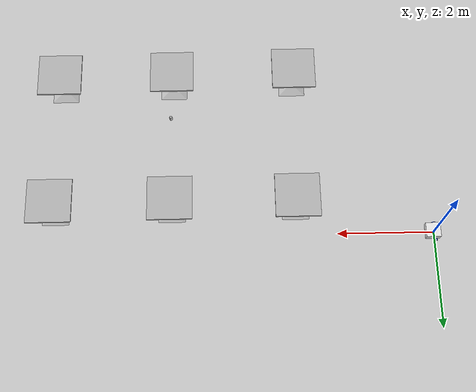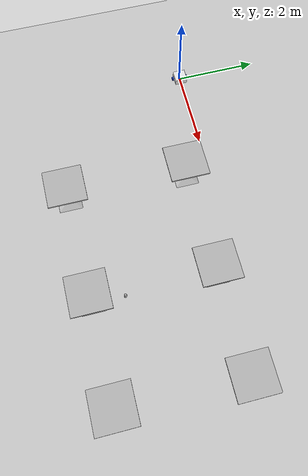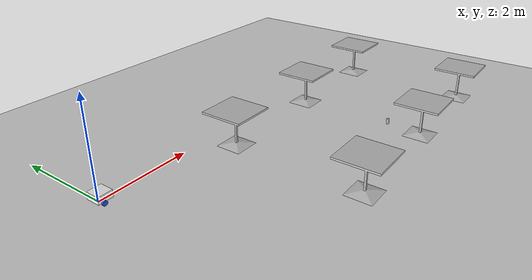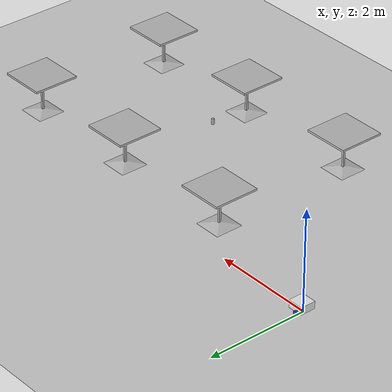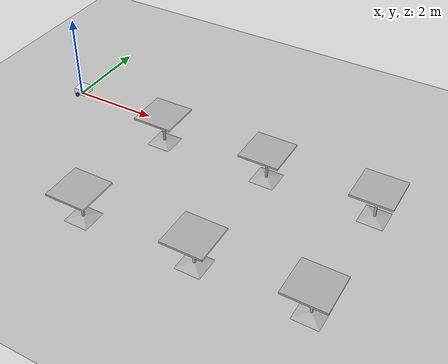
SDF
<sdf version="1.7">
 <world name="default">
  <light name="sun" type="directional">
   <pose>0 0 10 0 -0 0</pose>
   <diffuse>0.8 0.8 0.8 1</diffuse>
   <specular>0.2 0.2 0.2 1</specular>
   <attenuation>
    <range>1000</range>
    <constant>0.9</constant>
    <linear>0.01</linear>
    <quadratic>0.001</quadratic>
   </attenuation>
   <direction>-0.5 0.1 -0.9</direction>
   <spot><inner_angle>0</inner_angle><outer_angle>0</outer_angle><falloff>0</falloff></spot>
  </light>
  <model name="ground_plane">
   <static>1</static>
   <link name="link">
    <collision name="collision">
     <geometry><plane><normal>0 0 1</normal><size>100 100</size></plane></geometry>
     <surface>
      <contact><collide_bitmask>65535</collide_bitmask></contact>
      <friction><ode><mu>100</mu><mu2>50</mu2></ode></friction>
     </surface>
    </collision>
    <visual name="visual">
     <cast_shadows>0</cast_shadows>
     <geometry><plane><normal>0 0 1</normal><size>100 100</size></plane></geometry>
     <material>
      <script><uri>file://media/materials/scripts/gazebo.material</uri><name>Gazebo/Grey</name></script>
     </material>
    </visual>
   </link>
  </model>
  <gravity>0 0 -9.8</gravity>
  <magnetic_field>6e-06 2.3e-05 -4.2e-05</magnetic_field>
  <atmosphere type="adiabatic"/>
  <physics type="ode">
   <max_step_size>0.001</max_step_size>
   <real_time_factor>1</real_time_factor>
   <real_time_update_rate>1000</real_time_update_rate>
  </physics>
  <scene><ambient>0.4 0.4 0.4 1</ambient><background>0.7 0.7 0.7 1</background><shadows>1</shadows></scene>
  <audio><device>default</device></audio>
  <spherical_coordinates>
   <surface_model>EARTH_WGS84</surface_model>
   <latitude_deg>0</latitude_deg>
   <longitude_deg>0</longitude_deg>
   <elevation>0</elevation>
   <heading_deg>0</heading_deg>
  </spherical_coordinates>
  <model name="my_bot">
   <link name="base_link">
    <inertial>
     <pose>0.065 0 0.0625 0 -0 0</pose>
     <mass>0.6</mass>
     <inertia>
      <ixx>0.0147354</ixx>
      <ixy>0</ixy>
      <ixz>0.0005625</ixz>
      <iyy>0.0154104</iyy>
      <iyz>0</iyz>
      <izz>0.008275</izz>
     </inertia>
    </inertial>
    <collision name="base_link_fixed_joint_lump__chassis_collision">
     <pose>0.05 0 0.075 0 -0 0</pose>
     <geometry><box><size>0.3 0.3 0.15</size></box></geometry>
    </collision>
    <collision name="base_link_fixed_joint_lump__caster_wheel_collision_1">
     <pose>0.14 0 0 0 -0 0</pose>
     <geometry><sphere><radius>0.05</radius></sphere></geometry>
     <surface><friction><ode><mu>0.001</mu><mu2>0.001</mu2></ode></friction></surface>
    </collision>
    <visual name="base_link_fixed_joint_lump__chassis_visual">
     <pose>0.05 0 0.075 0 -0 0</pose>
     <geometry><box><size>0.3 0.3 0.15</size></box></geometry>
     <material>
      <script><name>Gazebo/White</name><uri>file://media/materials/scripts/gazebo.material</uri></script>
     </material>
    </visual>
    <visual name="base_link_fixed_joint_lump__caster_wheel_visual_1">
     <pose>0.14 0 0 0 -0 0</pose>
     <geometry><sphere><radius>0.05</radius></sphere></geometry>
     <material>
      <script><name>Gazebo/Black</name><uri>file://media/materials/scripts/gazebo.material</uri></script>
     </material>
    </visual>
   </link>
   <joint name="left_wheel_joint" type="revolute">
    <pose relative_to="base_link">0 0.175 0 -1.5708 0 0</pose>
    <parent>base_link</parent>
    <child>left_wheel</child>
    <axis>
     <xyz>0 0 1</xyz>
     <limit><lower>-1e+16</lower><upper>1e+16</upper></limit>
     <dynamics><spring_reference>0</spring_reference><spring_stiffness>0</spring_stiffness></dynamics>
    </axis>
   </joint>
   <link name="left_wheel">
    <pose relative_to="left_wheel_joint">0 0 0 0 -0 0</pose>
    <inertial>
     <mass>0.1</mass>
     <inertia>
      <ixx>7.58333e-05</ixx>
      <ixy>0</ixy>
      <ixz>0</ixz>
      <iyy>7.58333e-05</iyy>
      <iyz>0</iyz>
      <izz>0.000125</izz>
     </inertia>
    </inertial>
    <collision name="left_wheel_collision">
     <geometry><cylinder><length>0.04</length><radius>0.05</radius></cylinder></geometry>
    </collision>
    <visual name="left_wheel_visual">
     <geometry><cylinder><length>0.04</length><radius>0.05</radius></cylinder></geometry>
     <material>
      <script><name>Gazebo/Blue</name><uri>file://media/materials/scripts/gazebo.material</uri></script>
     </material>
    </visual>
   </link>
   <joint name="right_wheel_joint" type="revolute">
    <pose relative_to="base_link">0 -0.175 0 1.5708 -0 0</pose>
    <parent>base_link</parent>
    <child>right_wheel</child>
    <axis>
     <xyz>0 0 -1</xyz>
     <limit><lower>-1e+16</lower><upper>1e+16</upper></limit>
     <dynamics><spring_reference>0</spring_reference><spring_stiffness>0</spring_stiffness></dynamics>
    </axis>
   </joint>
   <link name="right_wheel">
    <pose relative_to="right_wheel_joint">0 0 0 0 -0 0</pose>
    <inertial>
     <mass>0.1</mass>
     <inertia>
      <ixx>7.58333e-05</ixx>
      <ixy>0</ixy>
      <ixz>0</ixz>
      <iyy>7.58333e-05</iyy>
      <iyz>0</iyz>
      <izz>0.000125</izz>
     </inertia>
    </inertial>
    <collision name="right_wheel_collision">
     <geometry><cylinder><length>0.04</length><radius>0.05</radius></cylinder></geometry>
    </collision>
    <visual name="right_wheel_visual">
     <geometry><cylinder><length>0.04</length><radius>0.05</radius></cylinder></geometry>
     <material>
      <script><name>Gazebo/Blue</name><uri>file://media/materials/scripts/gazebo.material</uri></script>
     </material>
    </visual>
   </link>
   <static>0</static>
   <plugin name="diff_drive" filename="libgazebo_ros_diff_drive.so">
    <left_joint>left_wheel_joint</left_joint>
    <right_joint>right_wheel_joint</right_joint>
    <wheel_seperation>0.35</wheel_seperation>
    <wheel_diameter>0.1</wheel_diameter>
    <max_wheel_torque>200</max_wheel_torque>
    <max_wheel_acceleration>10.0</max_wheel_acceleration>
    <odometry_frame>odom</odometry_frame>
    <robot_base_frame>base_link</robot_base_frame>
    <publish_odom>1</publish_odom>
    <publish_odom_tf>1</publish_odom_tf>
    <publish_wheel_tf>1</publish_wheel_tf>
   </plugin>
   <pose>-0.003131 3.6e-05 0.05 0 1e-06 0.001427</pose>
  </model>
  <model name="cafe_table">
   <static>1</static>
   <link name="link">
    <collision name="surface">
     <pose>0 0 0.755 0 -0 0</pose>
     <geometry><box><size>0.913 0.913 0.04</size></box></geometry>
    </collision>
    <collision name="column">
     <pose>0 0 0.37 0 -0 0</pose>
     <geometry><box><size>0.042 0.042 0.74</size></box></geometry>
    </collision>
    <collision name="base">
     <pose>0 0 0.02 0 -0 0</pose>
     <geometry><box><size>0.56 0.56 0.04</size></box></geometry>
    </collision>
    <visual name="visual">
     <geometry><mesh><uri>model://cafe_table/meshes/cafe_table.dae</uri></mesh></geometry>
    </visual>
   </link>
   <pose>2.85509 -0.614883 0 0 -0 0</pose>
  </model>
  <model name="cafe_table_0">
   <static>1</static>
   <link name="link">
    <collision name="surface">
     <pose>0 0 0.755 0 -0 0</pose>
     <geometry><box><size>0.913 0.913 0.04</size></box></geometry>
    </collision>
    <collision name="column">
     <pose>0 0 0.37 0 -0 0</pose>
     <geometry><box><size>0.042 0.042 0.74</size></box></geometry>
    </collision>
    <collision name="base">
     <pose>0 0 0.02 0 -0 0</pose>
     <geometry><box><size>0.56 0.56 0.04</size></box></geometry>
    </collision>
    <visual name="visual">
     <geometry><mesh><uri>model://cafe_table/meshes/cafe_table.dae</uri></mesh></geometry>
    </visual>
   </link>
   <pose>2.81892 -3.49337 0 0 -0 0</pose>
  </model>
  <model name="cafe_table_1">
   <static>1</static>
   <link name="link">
    <collision name="surface">
     <pose>0 0 0.755 0 -0 0</pose>
     <geometry><box><size>0.913 0.913 0.04</size></box></geometry>
    </collision>
    <collision name="column">
     <pose>0 0 0.37 0 -0 0</pose>
     <geometry><box><size>0.042 0.042 0.74</size></box></geometry>
    </collision>
    <collision name="base">
     <pose>0 0 0.02 0 -0 0</pose>
     <geometry><box><size>0.56 0.56 0.04</size></box></geometry>
    </collision>
    <visual name="visual">
     <geometry><mesh><uri>model://cafe_table/meshes/cafe_table.dae</uri></mesh></geometry>
    </visual>
   </link>
   <pose>5.44283 -0.600941 0 0 -0 0</pose>
  </model>
  <model name="cafe_table_2">
   <static>1</static>
   <link name="link">
    <collision name="surface">
     <pose>0 0 0.755 0 -0 0</pose>
     <geometry><box><size>0.913 0.913 0.04</size></box></geometry>
    </collision>
    <collision name="column">
     <pose>0 0 0.37 0 -0 0</pose>
     <geometry><box><size>0.042 0.042 0.74</size></box></geometry>
    </collision>
    <collision name="base">
     <pose>0 0 0.02 0 -0 0</pose>
     <geometry><box><size>0.56 0.56 0.04</size></box></geometry>
    </collision>
    <visual name="visual">
     <geometry><mesh><uri>model://cafe_table/meshes/cafe_table.dae</uri></mesh></geometry>
    </visual>
   </link>
   <pose>5.41182 -3.45711 0 0 -0 0</pose>
  </model>
  <model name="cafe_table_3">
   <static>1</static>
   <link name="link">
    <collision name="surface">
     <pose>0 0 0.755 0 -0 0</pose>
     <geometry><box><size>0.913 0.913 0.04</size></box></geometry>
    </collision>
    <collision name="column">
     <pose>0 0 0.37 0 -0 0</pose>
     <geometry><box><size>0.042 0.042 0.74</size></box></geometry>
    </collision>
    <collision name="base">
     <pose>0 0 0.02 0 -0 0</pose>
     <geometry><box><size>0.56 0.56 0.04</size></box></geometry>
    </collision>
    <visual name="visual">
     <geometry><mesh><uri>model://cafe_table/meshes/cafe_table.dae</uri></mesh></geometry>
    </visual>
   </link>
   <pose>7.79415 -3.4281 0 0 -0 0</pose>
  </model>
  <model name="cafe_table_4">
   <static>1</static>
   <link name="link">
    <collision name="surface">
     <pose>0 0 0.755 0 -0 0</pose>
     <geometry><box><size>0.913 0.913 0.04</size></box></geometry>
    </collision>
    <collision name="column">
     <pose>0 0 0.37 0 -0 0</pose>
     <geometry><box><size>0.042 0.042 0.74</size></box></geometry>
    </collision>
    <collision name="base">
     <pose>0 0 0.02 0 -0 0</pose>
     <geometry><box><size>0.56 0.56 0.04</size></box></geometry>
    </collision>
    <visual name="visual">
     <geometry><mesh><uri>model://cafe_table/meshes/cafe_table.dae</uri></mesh></geometry>
    </visual>
   </link>
   <pose>7.87313 -0.585591 0 0 -0 0</pose>
  </model>
  <model name="coke_can">
   <link name="link">
    <inertial>
     <pose>0 0 0.06 0 -0 0</pose>
     <mass>0.39</mass>
     <inertia>
      <ixx>0.00055575</ixx>
      <ixy>0</ixy>
      <ixz>0</ixz>
      <iyy>0.00055575</iyy>
      <iyz>0</iyz>
      <izz>0.0001755</izz>
     </inertia>
    </inertial>
    <collision name="collision">
     <pose>0.003937 0.004724 -0.18 0 -0 0</pose>
     <geometry><mesh><uri>model://coke_can/meshes/coke_can.dae</uri></mesh></geometry>
     <surface>
      <friction><ode><mu>1</mu><mu2>1</mu2></ode></friction>
      <contact><ode><kp>1e+07</kp><kd>1</kd><min_depth>0.001</min_depth><max_vel>0.1</max_vel></ode></contact>
     </surface>
    </collision>
    <visual name="visual">
     <pose>0.003937 0.004724 -0.18 0 -0 0</pose>
     <geometry><mesh><uri>model://coke_can/meshes/coke_can.dae</uri></mesh></geometry>
    </visual>
   </link>
   <pose>5.47735 -2.69979 -0.002659 -0.055112 0.007741 -0.000483</pose>
  </model>
 </world>
</sdf>
